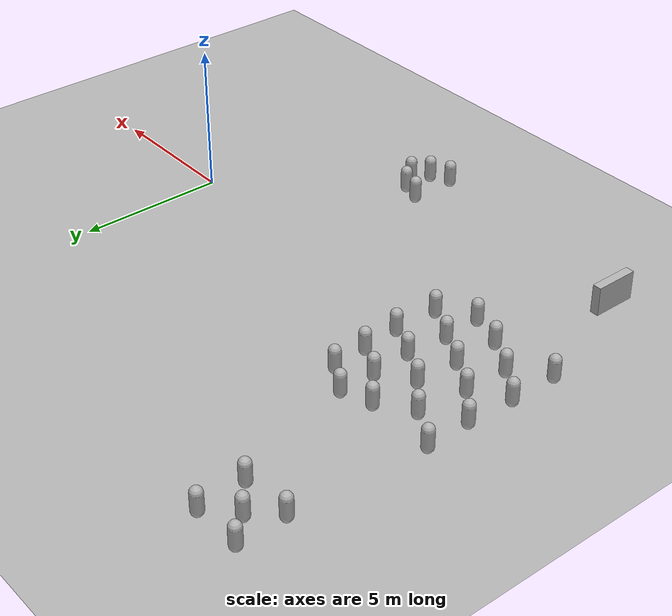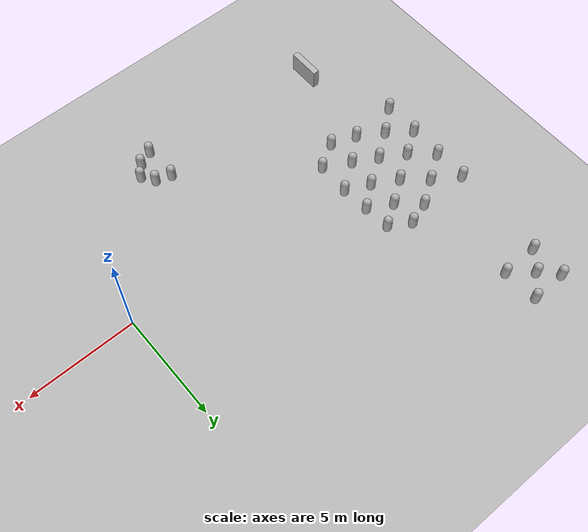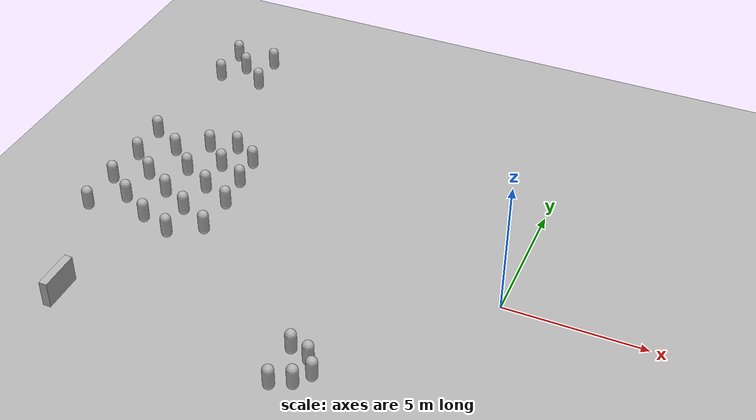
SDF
<sdf version="1.10">
 <world name="default">
  <model name="ground_plane">
   <static>true</static>
   <link name="link">
    <collision name="collision">
     <geometry><plane><normal>0 0 1</normal><size>100 100</size></plane></geometry>
     <surface><friction><ode><mu>100</mu><mu2>50</mu2></ode></friction></surface>
    </collision>
    <visual name="visual">
     <cast_shadows>false</cast_shadows>
     <geometry><plane><normal>0 0 1</normal><size>100 100</size></plane></geometry>
     <material>
      <ambient>0.300000012 0.300000012 0.300000012 1</ambient>
      <diffuse>0.699999988 0.699999988 0.699999988 1</diffuse>
      <specular>0.00999999978 0.00999999978 0.00999999978 1</specular>
     </material>
    </visual>
    <inertial>
     <mass>1</mass>
     <inertia><ixx>1</ixx><ixy>0</ixy><ixz>0</ixz><iyy>1</iyy><iyz>0</iyz><izz>1</izz></inertia>
    </inertial>
   </link>
  </model>
  <model name="capsule">
   <pose>-4.3596579016398547 -5.4679277364129284 0.499999999902001 0 0 0</pose>
   <link name="capsule_link">
    <inertial>
     <inertia>
      <ixx>0.074153999999999998</ixx>
      <ixy>0</ixy>
      <ixz>0</ixz>
      <iyy>0.074153999999999998</iyy>
      <iyz>0</iyz>
      <izz>0.018769000000000001</izz>
     </inertia>
     <mass>1</mass>
    </inertial>
    <collision name="capsule_collision">
     <geometry>
      <capsule><radius>0.20000000000000001</radius><length>0.59999999999999998</length></capsule>
     </geometry>
    </collision>
    <visual name="capsule_visual">
     <geometry>
      <capsule><radius>0.20000000000000001</radius><length>0.59999999999999998</length></capsule>
     </geometry>
     <material>
      <ambient>0.300000012 0.300000012 0.300000012 1</ambient>
      <diffuse>0.699999988 0.699999988 0.699999988 1</diffuse>
      <specular>1 1 1 1</specular>
     </material>
    </visual>
   </link>
   <static>false</static>
  </model>
  <model name="capsule_0">
   <pose>-4.7561927102589001 -4.8971559023635631 0.499999999902001 0 0 0</pose>
   <link name="capsule_link">
    <inertial>
     <inertia>
      <ixx>0.074153999999999998</ixx>
      <ixy>0</ixy>
      <ixz>0</ixz>
      <iyy>0.074153999999999998</iyy>
      <iyz>0</iyz>
      <izz>0.018769000000000001</izz>
     </inertia>
     <mass>1</mass>
    </inertial>
    <collision name="capsule_collision">
     <geometry>
      <capsule><radius>0.20000000000000001</radius><length>0.59999999999999998</length></capsule>
     </geometry>
    </collision>
    <visual name="capsule_visual">
     <geometry>
      <capsule><radius>0.20000000000000001</radius><length>0.59999999999999998</length></capsule>
     </geometry>
     <material>
      <ambient>0.300000012 0.300000012 0.300000012 1</ambient>
      <diffuse>0.699999988 0.699999988 0.699999988 1</diffuse>
      <specular>1 1 1 1</specular>
     </material>
    </visual>
   </link>
   <static>false</static>
  </model>
  <model name="capsule_1">
   <pose>-4.7616738370725891 -6.0071244985229448 0.499999999902001 0 0 0</pose>
   <link name="capsule_link">
    <inertial>
     <inertia>
      <ixx>0.074153999999999998</ixx>
      <ixy>0</ixy>
      <ixz>0</ixz>
      <iyy>0.074153999999999998</iyy>
      <iyz>0</iyz>
      <izz>0.018769000000000001</izz>
     </inertia>
     <mass>1</mass>
    </inertial>
    <collision name="capsule_collision">
     <geometry>
      <capsule><radius>0.20000000000000001</radius><length>0.59999999999999998</length></capsule>
     </geometry>
    </collision>
    <visual name="capsule_visual">
     <geometry>
      <capsule><radius>0.20000000000000001</radius><length>0.59999999999999998</length></capsule>
     </geometry>
     <material>
      <ambient>0.300000012 0.300000012 0.300000012 1</ambient>
      <diffuse>0.699999988 0.699999988 0.699999988 1</diffuse>
      <specular>1 1 1 1</specular>
     </material>
    </visual>
   </link>
   <static>false</static>
  </model>
  <model name="capsule_2">
   <pose>-5.4696102142333984 -4.6690988540649414 0.499999999902001 0 0 0</pose>
   <link name="capsule_link">
    <inertial>
     <inertia>
      <ixx>0.074153999999999998</ixx>
      <ixy>0</ixy>
      <ixz>0</ixz>
      <iyy>0.074153999999999998</iyy>
      <iyz>0</iyz>
      <izz>0.018769000000000001</izz>
     </inertia>
     <mass>1</mass>
    </inertial>
    <collision name="capsule_collision">
     <geometry>
      <capsule><radius>0.20000000000000001</radius><length>0.59999999999999998</length></capsule>
     </geometry>
    </collision>
    <visual name="capsule_visual">
     <geometry>
      <capsule><radius>0.20000000000000001</radius><length>0.59999999999999998</length></capsule>
     </geometry>
     <material>
      <ambient>0.300000012 0.300000012 0.300000012 1</ambient>
      <diffuse>0.699999988 0.699999988 0.699999988 1</diffuse>
      <specular>1 1 1 1</specular>
     </material>
    </visual>
   </link>
   <static>false</static>
  </model>
  <model name="capsule_3">
   <pose>-5.442518352186676 -6.3138601524357005 0.499999999902001 0 0 0</pose>
   <link name="capsule_link">
    <inertial>
     <inertia>
      <ixx>0.074153999999999998</ixx>
      <ixy>0</ixy>
      <ixz>0</ixz>
      <iyy>0.074153999999999998</iyy>
      <iyz>0</iyz>
      <izz>0.018769000000000001</izz>
     </inertia>
     <mass>1</mass>
    </inertial>
    <collision name="capsule_collision">
     <geometry>
      <capsule><radius>0.20000000000000001</radius><length>0.59999999999999998</length></capsule>
     </geometry>
    </collision>
    <visual name="capsule_visual">
     <geometry>
      <capsule><radius>0.20000000000000001</radius><length>0.59999999999999998</length></capsule>
     </geometry>
     <material>
      <ambient>0.300000012 0.300000012 0.300000012 1</ambient>
      <diffuse>0.699999988 0.699999988 0.699999988 1</diffuse>
      <specular>1 1 1 1</specular>
     </material>
    </visual>
   </link>
   <static>false</static>
  </model>
  <model name="capsule_4">
   <pose>-11.056052189980896 3.4762397267440797 0.5 0 0 0</pose>
   <link name="capsule_link">
    <inertial>
     <inertia>
      <ixx>0.074153999999999998</ixx>
      <ixy>0</ixy>
      <ixz>0</ixz>
      <iyy>0.074153999999999998</iyy>
      <iyz>0</iyz>
      <izz>0.018769000000000001</izz>
     </inertia>
     <mass>1</mass>
    </inertial>
    <collision name="capsule_collision">
     <geometry>
      <capsule><radius>0.20000000000000001</radius><length>0.59999999999999998</length></capsule>
     </geometry>
    </collision>
    <visual name="capsule_visual">
     <geometry>
      <capsule><radius>0.20000000000000001</radius><length>0.59999999999999998</length></capsule>
     </geometry>
     <material>
      <ambient>0.300000012 0.300000012 0.300000012 1</ambient>
      <diffuse>0.699999988 0.699999988 0.699999988 1</diffuse>
      <specular>1 1 1 1</specular>
     </material>
    </visual>
   </link>
   <static>false</static>
  </model>
  <model name="capsule_5">
   <pose>-10.953896115314178 2.2372550711606158 0.5 0 0 0</pose>
   <link name="capsule_link">
    <inertial>
     <inertia>
      <ixx>0.074153999999999998</ixx>
      <ixy>0</ixy>
      <ixz>0</ixz>
      <iyy>0.074153999999999998</iyy>
      <iyz>0</iyz>
      <izz>0.018769000000000001</izz>
     </inertia>
     <mass>1</mass>
    </inertial>
    <collision name="capsule_collision">
     <geometry>
      <capsule><radius>0.20000000000000001</radius><length>0.59999999999999998</length></capsule>
     </geometry>
    </collision>
    <visual name="capsule_visual">
     <geometry>
      <capsule><radius>0.20000000000000001</radius><length>0.59999999999999998</length></capsule>
     </geometry>
     <material>
      <ambient>0.300000012 0.300000012 0.300000012 1</ambient>
      <diffuse>0.699999988 0.699999988 0.699999988 1</diffuse>
      <specular>1 1 1 1</specular>
     </material>
    </visual>
   </link>
   <static>false</static>
  </model>
  <model name="capsule_6">
   <pose>-10.842985403896598 0.91654750196049051 0.5 0 0 0</pose>
   <link name="capsule_link">
    <inertial>
     <inertia>
      <ixx>0.074153999999999998</ixx>
      <ixy>0</ixy>
      <ixz>0</ixz>
      <iyy>0.074153999999999998</iyy>
      <iyz>0</iyz>
      <izz>0.018769000000000001</izz>
     </inertia>
     <mass>1</mass>
    </inertial>
    <collision name="capsule_collision">
     <geometry>
      <capsule><radius>0.20000000000000001</radius><length>0.59999999999999998</length></capsule>
     </geometry>
    </collision>
    <visual name="capsule_visual">
     <geometry>
      <capsule><radius>0.20000000000000001</radius><length>0.59999999999999998</length></capsule>
     </geometry>
     <material>
      <ambient>0.300000012 0.300000012 0.300000012 1</ambient>
      <diffuse>0.699999988 0.699999988 0.699999988 1</diffuse>
      <specular>1 1 1 1</specular>
     </material>
    </visual>
   </link>
   <static>false</static>
  </model>
  <model name="capsule_7">
   <pose>-10.890101034931011 -0.62713598966484696 0.5 0 0 0</pose>
   <link name="capsule_link">
    <inertial>
     <inertia>
      <ixx>0.074153999999999998</ixx>
      <ixy>0</ixy>
      <ixz>0</ixz>
      <iyy>0.074153999999999998</iyy>
      <iyz>0</iyz>
      <izz>0.018769000000000001</izz>
     </inertia>
     <mass>1</mass>
    </inertial>
    <collision name="capsule_collision">
     <geometry>
      <capsule><radius>0.20000000000000001</radius><length>0.59999999999999998</length></capsule>
     </geometry>
    </collision>
    <visual name="capsule_visual">
     <geometry>
      <capsule><radius>0.20000000000000001</radius><length>0.59999999999999998</length></capsule>
     </geometry>
     <material>
      <ambient>0.300000012 0.300000012 0.300000012 1</ambient>
      <diffuse>0.699999988 0.699999988 0.699999988 1</diffuse>
      <specular>1 1 1 1</specular>
     </material>
    </visual>
   </link>
   <static>false</static>
  </model>
  <model name="capsule_8">
   <pose>-12.043993582536826 2.8358061799317604 0.5 0 0 0</pose>
   <link name="capsule_link">
    <inertial>
     <inertia>
      <ixx>0.074153999999999998</ixx>
      <ixy>0</ixy>
      <ixz>0</ixz>
      <iyy>0.074153999999999998</iyy>
      <iyz>0</iyz>
      <izz>0.018769000000000001</izz>
     </inertia>
     <mass>1</mass>
    </inertial>
    <collision name="capsule_collision">
     <geometry>
      <capsule><radius>0.20000000000000001</radius><length>0.59999999999999998</length></capsule>
     </geometry>
    </collision>
    <visual name="capsule_visual">
     <geometry>
      <capsule><radius>0.20000000000000001</radius><length>0.59999999999999998</length></capsule>
     </geometry>
     <material>
      <ambient>0.300000012 0.300000012 0.300000012 1</ambient>
      <diffuse>0.699999988 0.699999988 0.699999988 1</diffuse>
      <specular>1 1 1 1</specular>
     </material>
    </visual>
   </link>
   <static>false</static>
  </model>
  <model name="capsule_9">
   <pose>-11.948828068630636 1.441209181654286 0.5 0 0 0</pose>
   <link name="capsule_link">
    <inertial>
     <inertia>
      <ixx>0.074153999999999998</ixx>
      <ixy>0</ixy>
      <ixz>0</ixz>
      <iyy>0.074153999999999998</iyy>
      <iyz>0</iyz>
      <izz>0.018769000000000001</izz>
     </inertia>
     <mass>1</mass>
    </inertial>
    <collision name="capsule_collision">
     <geometry>
      <capsule><radius>0.20000000000000001</radius><length>0.59999999999999998</length></capsule>
     </geometry>
    </collision>
    <visual name="capsule_visual">
     <geometry>
      <capsule><radius>0.20000000000000001</radius><length>0.59999999999999998</length></capsule>
     </geometry>
     <material>
      <ambient>0.300000012 0.300000012 0.300000012 1</ambient>
      <diffuse>0.699999988 0.699999988 0.699999988 1</diffuse>
      <specular>1 1 1 1</specular>
     </material>
    </visual>
   </link>
   <static>false</static>
  </model>
  <model name="capsule_10">
   <pose>-12.082346931083139 0.025977858515768393 0.5 0 0 0</pose>
   <link name="capsule_link">
    <inertial>
     <inertia>
      <ixx>0.074153999999999998</ixx>
      <ixy>0</ixy>
      <ixz>0</ixz>
      <iyy>0.074153999999999998</iyy>
      <iyz>0</iyz>
      <izz>0.018769000000000001</izz>
     </inertia>
     <mass>1</mass>
    </inertial>
    <collision name="capsule_collision">
     <geometry>
      <capsule><radius>0.20000000000000001</radius><length>0.59999999999999998</length></capsule>
     </geometry>
    </collision>
    <visual name="capsule_visual">
     <geometry>
      <capsule><radius>0.20000000000000001</radius><length>0.59999999999999998</length></capsule>
     </geometry>
     <material>
      <ambient>0.300000012 0.300000012 0.300000012 1</ambient>
      <diffuse>0.699999988 0.699999988 0.699999988 1</diffuse>
      <specular>1 1 1 1</specular>
     </material>
    </visual>
   </link>
   <static>false</static>
  </model>
  <model name="capsule_11">
   <pose>-13.03337485542273 3.7288007309015123 0.5 0 0 0</pose>
   <link name="capsule_link">
    <inertial>
     <inertia>
      <ixx>0.074153999999999998</ixx>
      <ixy>0</ixy>
      <ixz>0</ixz>
      <iyy>0.074153999999999998</iyy>
      <iyz>0</iyz>
      <izz>0.018769000000000001</izz>
     </inertia>
     <mass>1</mass>
    </inertial>
    <collision name="capsule_collision">
     <geometry>
      <capsule><radius>0.20000000000000001</radius><length>0.59999999999999998</length></capsule>
     </geometry>
    </collision>
    <visual name="capsule_visual">
     <geometry>
      <capsule><radius>0.20000000000000001</radius><length>0.59999999999999998</length></capsule>
     </geometry>
     <material>
      <ambient>0.300000012 0.300000012 0.300000012 1</ambient>
      <diffuse>0.699999988 0.699999988 0.699999988 1</diffuse>
      <specular>1 1 1 1</specular>
     </material>
    </visual>
   </link>
   <static>false</static>
  </model>
  <model name="capsule_12">
   <pose>-13.09982357088222 2.0962399102330469 0.5 0 0 0</pose>
   <link name="capsule_link">
    <inertial>
     <inertia>
      <ixx>0.074153999999999998</ixx>
      <ixy>0</ixy>
      <ixz>0</ixz>
      <iyy>0.074153999999999998</iyy>
      <iyz>0</iyz>
      <izz>0.018769000000000001</izz>
     </inertia>
     <mass>1</mass>
    </inertial>
    <collision name="capsule_collision">
     <geometry>
      <capsule><radius>0.20000000000000001</radius><length>0.59999999999999998</length></capsule>
     </geometry>
    </collision>
    <visual name="capsule_visual">
     <geometry>
      <capsule><radius>0.20000000000000001</radius><length>0.59999999999999998</length></capsule>
     </geometry>
     <material>
      <ambient>0.300000012 0.300000012 0.300000012 1</ambient>
      <diffuse>0.699999988 0.699999988 0.699999988 1</diffuse>
      <specular>1 1 1 1</specular>
     </material>
    </visual>
   </link>
   <static>false</static>
  </model>
  <model name="capsule_13">
   <pose>-13.180408779940535 0.63184628292296185 0.5 0 0 0</pose>
   <link name="capsule_link">
    <inertial>
     <inertia>
      <ixx>0.074153999999999998</ixx>
      <ixy>0</ixy>
      <ixz>0</ixz>
      <iyy>0.074153999999999998</iyy>
      <iyz>0</iyz>
      <izz>0.018769000000000001</izz>
     </inertia>
     <mass>1</mass>
    </inertial>
    <collision name="capsule_collision">
     <geometry>
      <capsule><radius>0.20000000000000001</radius><length>0.59999999999999998</length></capsule>
     </geometry>
    </collision>
    <visual name="capsule_visual">
     <geometry>
      <capsule><radius>0.20000000000000001</radius><length>0.59999999999999998</length></capsule>
     </geometry>
     <material>
      <ambient>0.300000012 0.300000012 0.300000012 1</ambient>
      <diffuse>0.699999988 0.699999988 0.699999988 1</diffuse>
      <specular>1 1 1 1</specular>
     </material>
    </visual>
   </link>
   <static>false</static>
  </model>
  <model name="capsule_14">
   <pose>-13.188921437822469 -0.91716094682917149 0.5 0 0 0</pose>
   <link name="capsule_link">
    <inertial>
     <inertia>
      <ixx>0.074153999999999998</ixx>
      <ixy>0</ixy>
      <ixz>0</ixz>
      <iyy>0.074153999999999998</iyy>
      <iyz>0</iyz>
      <izz>0.018769000000000001</izz>
     </inertia>
     <mass>1</mass>
    </inertial>
    <collision name="capsule_collision">
     <geometry>
      <capsule><radius>0.20000000000000001</radius><length>0.59999999999999998</length></capsule>
     </geometry>
    </collision>
    <visual name="capsule_visual">
     <geometry>
      <capsule><radius>0.20000000000000001</radius><length>0.59999999999999998</length></capsule>
     </geometry>
     <material>
      <ambient>0.300000012 0.300000012 0.300000012 1</ambient>
      <diffuse>0.699999988 0.699999988 0.699999988 1</diffuse>
      <specular>1 1 1 1</specular>
     </material>
    </visual>
   </link>
   <static>false</static>
  </model>
  <model name="capsule_15">
   <pose>-14.130217016531663 2.9961595173529445 0.5 0 0 0</pose>
   <link name="capsule_link">
    <inertial>
     <inertia>
      <ixx>0.074153999999999998</ixx>
      <ixy>0</ixy>
      <ixz>0</ixz>
      <iyy>0.074153999999999998</iyy>
      <iyz>0</iyz>
      <izz>0.018769000000000001</izz>
     </inertia>
     <mass>1</mass>
    </inertial>
    <collision name="capsule_collision">
     <geometry>
      <capsule><radius>0.20000000000000001</radius><length>0.59999999999999998</length></capsule>
     </geometry>
    </collision>
    <visual name="capsule_visual">
     <geometry>
      <capsule><radius>0.20000000000000001</radius><length>0.59999999999999998</length></capsule>
     </geometry>
     <material>
      <ambient>0.300000012 0.300000012 0.300000012 1</ambient>
      <diffuse>0.699999988 0.699999988 0.699999988 1</diffuse>
      <specular>1 1 1 1</specular>
     </material>
    </visual>
   </link>
   <static>false</static>
  </model>
  <model name="capsule_16">
   <pose>-14.298856437918507 1.3053569742705411 0.5 0 0 0</pose>
   <link name="capsule_link">
    <inertial>
     <inertia>
      <ixx>0.074153999999999998</ixx>
      <ixy>0</ixy>
      <ixz>0</ixz>
      <iyy>0.074153999999999998</iyy>
      <iyz>0</iyz>
      <izz>0.018769000000000001</izz>
     </inertia>
     <mass>1</mass>
    </inertial>
    <collision name="capsule_collision">
     <geometry>
      <capsule><radius>0.20000000000000001</radius><length>0.59999999999999998</length></capsule>
     </geometry>
    </collision>
    <visual name="capsule_visual">
     <geometry>
      <capsule><radius>0.20000000000000001</radius><length>0.59999999999999998</length></capsule>
     </geometry>
     <material>
      <ambient>0.300000012 0.300000012 0.300000012 1</ambient>
      <diffuse>0.699999988 0.699999988 0.699999988 1</diffuse>
      <specular>1 1 1 1</specular>
     </material>
    </visual>
   </link>
   <static>false</static>
  </model>
  <model name="capsule_17">
   <pose>-14.340805112361444 -0.21301680264628375 0.5 0 0 0</pose>
   <link name="capsule_link">
    <inertial>
     <inertia>
      <ixx>0.074153999999999998</ixx>
      <ixy>0</ixy>
      <ixz>0</ixz>
      <iyy>0.074153999999999998</iyy>
      <iyz>0</iyz>
      <izz>0.018769000000000001</izz>
     </inertia>
     <mass>1</mass>
    </inertial>
    <collision name="capsule_collision">
     <geometry>
      <capsule><radius>0.20000000000000001</radius><length>0.59999999999999998</length></capsule>
     </geometry>
    </collision>
    <visual name="capsule_visual">
     <geometry>
      <capsule><radius>0.20000000000000001</radius><length>0.59999999999999998</length></capsule>
     </geometry>
     <material>
      <ambient>0.300000012 0.300000012 0.300000012 1</ambient>
      <diffuse>0.699999988 0.699999988 0.699999988 1</diffuse>
      <specular>1 1 1 1</specular>
     </material>
    </visual>
   </link>
   <static>false</static>
  </model>
  <model name="capsule_18">
   <pose>-15.355579566955877 3.7460085785627619 0.5 0 0 0</pose>
   <link name="capsule_link">
    <inertial>
     <inertia>
      <ixx>0.074153999999999998</ixx>
      <ixy>0</ixy>
      <ixz>0</ixz>
      <iyy>0.074153999999999998</iyy>
      <iyz>0</iyz>
      <izz>0.018769000000000001</izz>
     </inertia>
     <mass>1</mass>
    </inertial>
    <collision name="capsule_collision">
     <geometry>
      <capsule><radius>0.20000000000000001</radius><length>0.59999999999999998</length></capsule>
     </geometry>
    </collision>
    <visual name="capsule_visual">
     <geometry>
      <capsule><radius>0.20000000000000001</radius><length>0.59999999999999998</length></capsule>
     </geometry>
     <material>
      <ambient>0.300000012 0.300000012 0.300000012 1</ambient>
      <diffuse>0.699999988 0.699999988 0.699999988 1</diffuse>
      <specular>1 1 1 1</specular>
     </material>
    </visual>
   </link>
   <static>false</static>
  </model>
  <model name="capsule_19">
   <pose>-15.316333259313357 2.1958646411405658 0.5 0 0 0</pose>
   <link name="capsule_link">
    <inertial>
     <inertia>
      <ixx>0.074153999999999998</ixx>
      <ixy>0</ixy>
      <ixz>0</ixz>
      <iyy>0.074153999999999998</iyy>
      <iyz>0</iyz>
      <izz>0.018769000000000001</izz>
     </inertia>
     <mass>1</mass>
    </inertial>
    <collision name="capsule_collision">
     <geometry>
      <capsule><radius>0.20000000000000001</radius><length>0.59999999999999998</length></capsule>
     </geometry>
    </collision>
    <visual name="capsule_visual">
     <geometry>
      <capsule><radius>0.20000000000000001</radius><length>0.59999999999999998</length></capsule>
     </geometry>
     <material>
      <ambient>0.300000012 0.300000012 0.300000012 1</ambient>
      <diffuse>0.699999988 0.699999988 0.699999988 1</diffuse>
      <specular>1 1 1 1</specular>
     </material>
    </visual>
   </link>
   <static>false</static>
  </model>
  <model name="capsule_20">
   <pose>-15.401041663057732 0.57278599637878491 0.5 0 0 0</pose>
   <link name="capsule_link">
    <inertial>
     <inertia>
      <ixx>0.074153999999999998</ixx>
      <ixy>0</ixy>
      <ixz>0</ixz>
      <iyy>0.074153999999999998</iyy>
      <iyz>0</iyz>
      <izz>0.018769000000000001</izz>
     </inertia>
     <mass>1</mass>
    </inertial>
    <collision name="capsule_collision">
     <geometry>
      <capsule><radius>0.20000000000000001</radius><length>0.59999999999999998</length></capsule>
     </geometry>
    </collision>
    <visual name="capsule_visual">
     <geometry>
      <capsule><radius>0.20000000000000001</radius><length>0.59999999999999998</length></capsule>
     </geometry>
     <material>
      <ambient>0.300000012 0.300000012 0.300000012 1</ambient>
      <diffuse>0.699999988 0.699999988 0.699999988 1</diffuse>
      <specular>1 1 1 1</specular>
     </material>
    </visual>
   </link>
   <static>false</static>
  </model>
  <model name="capsule_21">
   <pose>-15.406336554991086 -1.1079719914214534 0.5 0 0 0</pose>
   <link name="capsule_link">
    <inertial>
     <inertia>
      <ixx>0.074153999999999998</ixx>
      <ixy>0</ixy>
      <ixz>0</ixz>
      <iyy>0.074153999999999998</iyy>
      <iyz>0</iyz>
      <izz>0.018769000000000001</izz>
     </inertia>
     <mass>1</mass>
    </inertial>
    <collision name="capsule_collision">
     <geometry>
      <capsule><radius>0.20000000000000001</radius><length>0.59999999999999998</length></capsule>
     </geometry>
    </collision>
    <visual name="capsule_visual">
     <geometry>
      <capsule><radius>0.20000000000000001</radius><length>0.59999999999999998</length></capsule>
     </geometry>
     <material>
      <ambient>0.300000012 0.300000012 0.300000012 1</ambient>
      <diffuse>0.699999988 0.699999988 0.699999988 1</diffuse>
      <specular>1 1 1 1</specular>
     </material>
    </visual>
   </link>
   <static>false</static>
  </model>
  <model name="capsule_22">
   <pose>-12.010096525116463 -1.3193355727224905 0.5 0 0 0</pose>
   <link name="capsule_link">
    <inertial>
     <inertia>
      <ixx>0.074153999999999998</ixx>
      <ixy>0</ixy>
      <ixz>0</ixz>
      <iyy>0.074153999999999998</iyy>
      <iyz>0</iyz>
      <izz>0.018769000000000001</izz>
     </inertia>
     <mass>1</mass>
    </inertial>
    <collision name="capsule_collision">
     <geometry>
      <capsule><radius>0.20000000000000001</radius><length>0.59999999999999998</length></capsule>
     </geometry>
    </collision>
    <visual name="capsule_visual">
     <geometry>
      <capsule><radius>0.20000000000000001</radius><length>0.59999999999999998</length></capsule>
     </geometry>
     <material>
      <ambient>0.300000012 0.300000012 0.300000012 1</ambient>
      <diffuse>0.699999988 0.699999988 0.699999988 1</diffuse>
      <specular>1 1 1 1</specular>
     </material>
    </visual>
   </link>
   <static>false</static>
  </model>
  <model name="capsule_23">
   <pose>-12.016568338387117 4.0613127029720095 0.5 0 0 0</pose>
   <link name="capsule_link">
    <inertial>
     <inertia>
      <ixx>0.074153999999999998</ixx>
      <ixy>0</ixy>
      <ixz>0</ixz>
      <iyy>0.074153999999999998</iyy>
      <iyz>0</iyz>
      <izz>0.018769000000000001</izz>
     </inertia>
     <mass>1</mass>
    </inertial>
    <collision name="capsule_collision">
     <geometry>
      <capsule><radius>0.20000000000000001</radius><length>0.59999999999999998</length></capsule>
     </geometry>
    </collision>
    <visual name="capsule_visual">
     <geometry>
      <capsule><radius>0.20000000000000001</radius><length>0.59999999999999998</length></capsule>
     </geometry>
     <material>
      <ambient>0.300000012 0.300000012 0.300000012 1</ambient>
      <diffuse>0.699999988 0.699999988 0.699999988 1</diffuse>
      <specular>1 1 1 1</specular>
     </material>
    </visual>
   </link>
   <static>false</static>
  </model>
  <model name="capsule_24">
   <pose>-15.052900314331055 9.9424076080322266 0.5 0 0 0</pose>
   <link name="capsule_link">
    <inertial>
     <inertia>
      <ixx>0.074153999999999998</ixx>
      <ixy>0</ixy>
      <ixz>0</ixz>
      <iyy>0.074153999999999998</iyy>
      <iyz>0</iyz>
      <izz>0.018769000000000001</izz>
     </inertia>
     <mass>1</mass>
    </inertial>
    <collision name="capsule_collision">
     <geometry>
      <capsule><radius>0.20000000000000001</radius><length>0.59999999999999998</length></capsule>
     </geometry>
    </collision>
    <visual name="capsule_visual">
     <geometry>
      <capsule><radius>0.20000000000000001</radius><length>0.59999999999999998</length></capsule>
     </geometry>
     <material>
      <ambient>0.300000012 0.300000012 0.300000012 1</ambient>
      <diffuse>0.699999988 0.699999988 0.699999988 1</diffuse>
      <specular>1 1 1 1</specular>
     </material>
    </visual>
   </link>
   <static>false</static>
  </model>
  <model name="capsule_25">
   <pose>-15.039699554443359 8.3203601837158203 0.5 0 0 0</pose>
   <link name="capsule_link">
    <inertial>
     <inertia>
      <ixx>0.074153999999999998</ixx>
      <ixy>0</ixy>
      <ixz>0</ixz>
      <iyy>0.074153999999999998</iyy>
      <iyz>0</iyz>
      <izz>0.018769000000000001</izz>
     </inertia>
     <mass>1</mass>
    </inertial>
    <collision name="capsule_collision">
     <geometry>
      <capsule><radius>0.20000000000000001</radius><length>0.59999999999999998</length></capsule>
     </geometry>
    </collision>
    <visual name="capsule_visual">
     <geometry>
      <capsule><radius>0.20000000000000001</radius><length>0.59999999999999998</length></capsule>
     </geometry>
     <material>
      <ambient>0.300000012 0.300000012 0.300000012 1</ambient>
      <diffuse>0.699999988 0.699999988 0.699999988 1</diffuse>
      <specular>1 1 1 1</specular>
     </material>
    </visual>
   </link>
   <static>false</static>
  </model>
  <model name="capsule_26">
   <pose>-14.32161808013916 9.177149772644043 0.5 0 0 0</pose>
   <link name="capsule_link">
    <inertial>
     <inertia>
      <ixx>0.074153999999999998</ixx>
      <ixy>0</ixy>
      <ixz>0</ixz>
      <iyy>0.074153999999999998</iyy>
      <iyz>0</iyz>
      <izz>0.018769000000000001</izz>
     </inertia>
     <mass>1</mass>
    </inertial>
    <collision name="capsule_collision">
     <geometry>
      <capsule><radius>0.20000000000000001</radius><length>0.59999999999999998</length></capsule>
     </geometry>
    </collision>
    <visual name="capsule_visual">
     <geometry>
      <capsule><radius>0.20000000000000001</radius><length>0.59999999999999998</length></capsule>
     </geometry>
     <material>
      <ambient>0.300000012 0.300000012 0.300000012 1</ambient>
      <diffuse>0.699999988 0.699999988 0.699999988 1</diffuse>
      <specular>1 1 1 1</specular>
     </material>
    </visual>
   </link>
   <static>false</static>
  </model>
  <model name="capsule_27">
   <pose>-13.422852954322462 9.97793621705706 0.5 0 0 0</pose>
   <link name="capsule_link">
    <inertial>
     <inertia>
      <ixx>0.074153999999999998</ixx>
      <ixy>0</ixy>
      <ixz>0</ixz>
      <iyy>0.074153999999999998</iyy>
      <iyz>0</iyz>
      <izz>0.018769000000000001</izz>
     </inertia>
     <mass>1</mass>
    </inertial>
    <collision name="capsule_collision">
     <geometry>
      <capsule><radius>0.20000000000000001</radius><length>0.59999999999999998</length></capsule>
     </geometry>
    </collision>
    <visual name="capsule_visual">
     <geometry>
      <capsule><radius>0.20000000000000001</radius><length>0.59999999999999998</length></capsule>
     </geometry>
     <material>
      <ambient>0.300000012 0.300000012 0.300000012 1</ambient>
      <diffuse>0.699999988 0.699999988 0.699999988 1</diffuse>
      <specular>1 1 1 1</specular>
     </material>
    </visual>
   </link>
   <static>false</static>
  </model>
  <model name="capsule_28">
   <pose>-13.318953336085618 8.3602565988199835 0.5 0 0 0</pose>
   <link name="capsule_link">
    <inertial>
     <inertia>
      <ixx>0.074153999999999998</ixx>
      <ixy>0</ixy>
      <ixz>0</ixz>
      <iyy>0.074153999999999998</iyy>
      <iyz>0</iyz>
      <izz>0.018769000000000001</izz>
     </inertia>
     <mass>1</mass>
    </inertial>
    <collision name="capsule_collision">
     <geometry>
      <capsule><radius>0.20000000000000001</radius><length>0.59999999999999998</length></capsule>
     </geometry>
    </collision>
    <visual name="capsule_visual">
     <geometry>
      <capsule><radius>0.20000000000000001</radius><length>0.59999999999999998</length></capsule>
     </geometry>
     <material>
      <ambient>0.300000012 0.300000012 0.300000012 1</ambient>
      <diffuse>0.699999988 0.699999988 0.699999988 1</diffuse>
      <specular>1 1 1 1</specular>
     </material>
    </visual>
   </link>
   <static>false</static>
  </model>
  <model name="box">
   <pose>-13.855529456322126 -5.2737424134877493 0.5 0 0 0</pose>
   <link name="box_link">
    <inertial>
     <inertia><ixx>0.16666</ixx><ixy>0</ixy><ixz>0</ixz><iyy>0.16666</iyy><iyz>0</iyz><izz>0.16666</izz></inertia>
     <mass>1</mass>
    </inertial>
    <collision name="box_collision"><geometry><box><size>0.3 1.5 1.0</size></box></geometry></collision>
    <visual name="box_visual">
     <geometry><box><size>0.3 1.5 1.0</size></box></geometry>
     <material>
      <ambient>0.300000012 0.300000012 0.300000012 1</ambient>
      <diffuse>0.699999988 0.699999988 0.699999988 1</diffuse>
      <specular>1 1 1 1</specular>
     </material>
    </visual>
   </link>
   <static>false</static>
  </model>
 </world>
</sdf>
